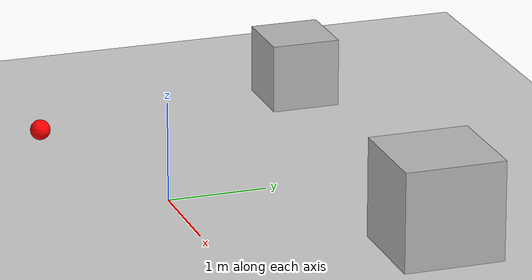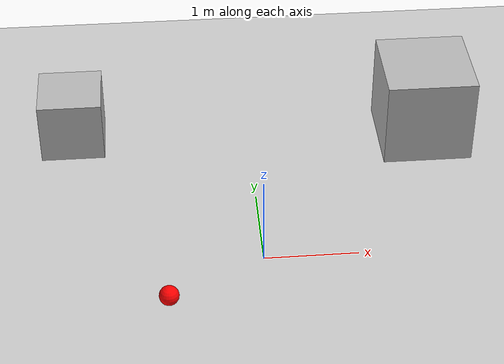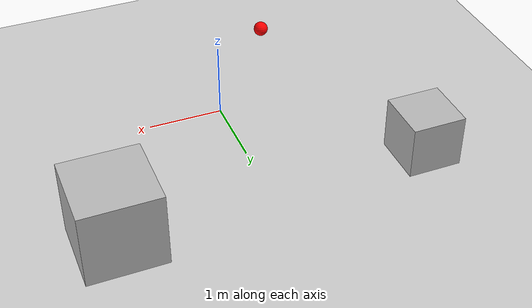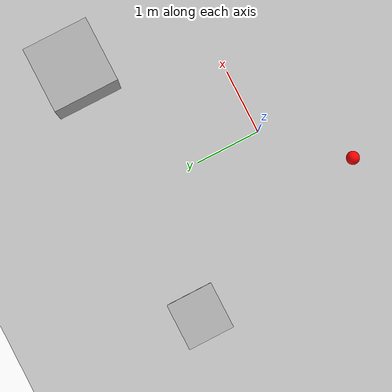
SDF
<?xml version="1.0" ?>
<sdf version="1.6">
  <world name="fire_detection_world">

    <!-- 插入地面 -->
    <include>
      <uri>model://ground_plane</uri>
    </include>

    <!-- 插入太陽 -->
    <include>
      <uri>model://sun</uri>
    </include>

    <!-- 插入障礙物 (立方體) -->
    <model name="obstacle_box">
      <pose>2 2 0.5 0 0 0</pose>
      <link name="link">
        <collision name="collision">
          <geometry>
            <box><size>1 1 1</size></box>
          </geometry>
        </collision>
        <visual name="visual">
          <geometry>
            <box><size>1 1 1</size></box>
          </geometry>
        </visual>
      </link>
    </model>

    <!-- 插入障礙物 (立方體) -->
    <model name="obstacle_box2">
        <pose>-2 2 0.5 0 0 0</pose>
        <link name="link">
          <collision name="collision">
            <geometry>
              <box><size>0.7 0.7 0.7</size></box>
            </geometry>
          </collision>
          <visual name="visual">
            <geometry>
              <box><size>0.7 0.7 0.7</size></box>
            </geometry>
          </visual>
        </link>
    </model>

    <!-- 插入紅色球作為火災模擬 -->
    <model name="fire_ball">
      <pose>-1 -1 0.5 0 0 0</pose> <!-- 提升 Z 軸高度到 0.5 -->
      <link name="link">
        <collision name="collision">
          <geometry>
            <sphere><radius>0.1</radius></sphere>
          </geometry>
        </collision>
        <visual name="visual">
          <geometry>
            <sphere><radius>0.1</radius></sphere>
          </geometry>
          <material>
            <ambient>1 0 0 1</ambient> <!-- 紅色 -->
            <diffuse>1 0 0 1</diffuse>
          </material>
        </visual>
      </link>
    </model>

  </world>
</sdf>
